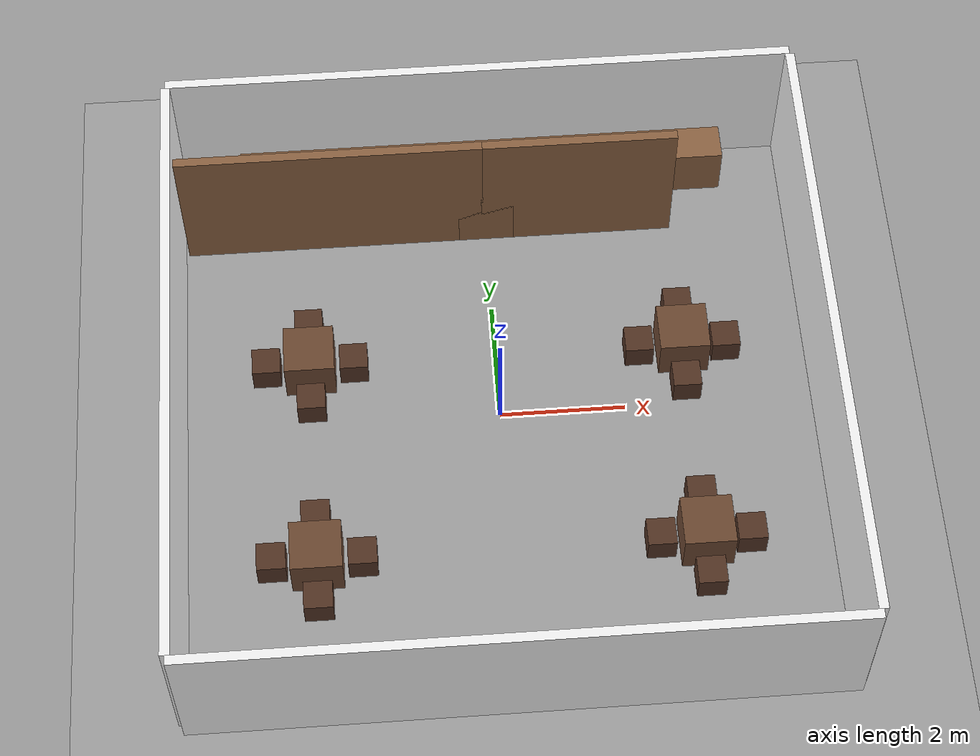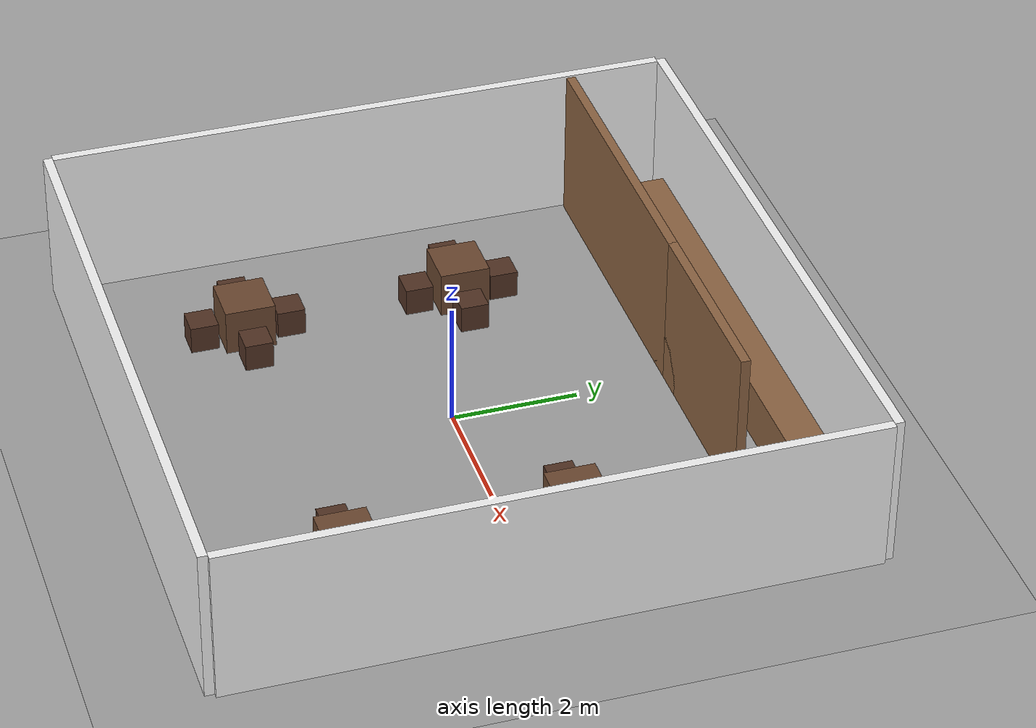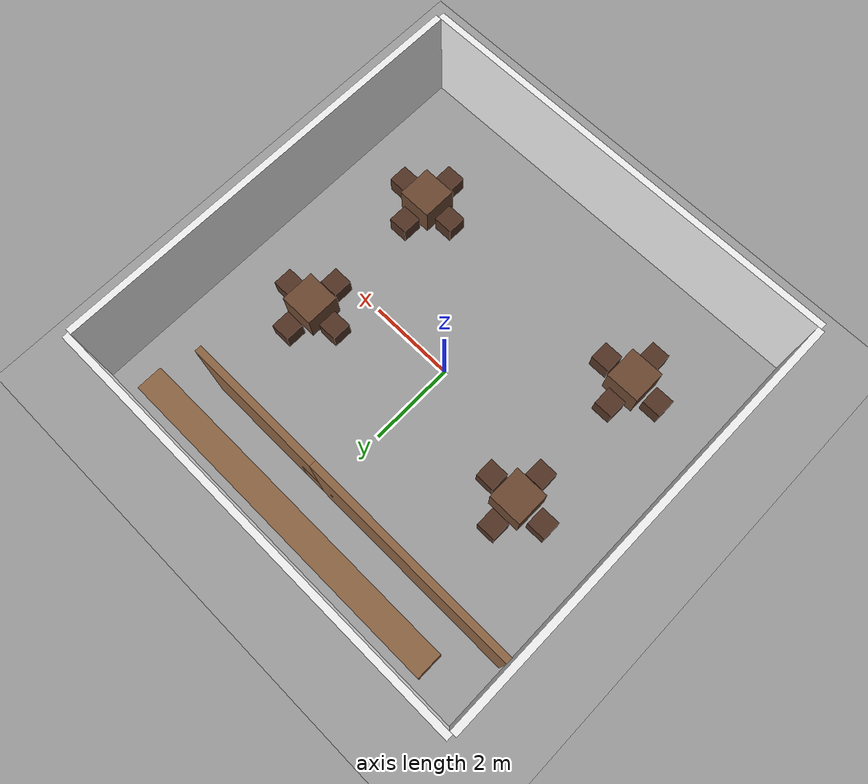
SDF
<?xml version="1.0" ?>
<sdf version="1.8">
  <world name="restaurant">
    <physics name="1ms" type="ignored">
      <max_step_size>0.001</max_step_size>
      <real_time_factor>1.0</real_time_factor>
    </physics>

    <plugin filename="libignition-gazebo6-physics-system.so" name="ignition::gazebo::systems::Physics"/>
    <plugin filename="libignition-gazebo6-user-commands-system.so" name="ignition::gazebo::systems::UserCommands"/>
    <plugin filename="libignition-gazebo6-scene-broadcaster-system.so" name="ignition::gazebo::systems::SceneBroadcaster"/>

    <gravity>0 0 -9.8</gravity>

    <light name="sun" type="directional">
      <cast_shadows>true</cast_shadows>
      <pose>0 0 10 0 0 0</pose>
      <diffuse>1 1 1 1</diffuse>
      <specular>0.15 0.15 0.15 1</specular>
      <direction>-0.5 0.5 -1</direction>
    </light>

    <model name="ground_plane">
      <static>true</static>
      <link name="link">
        <collision name="collision">
          <geometry>
            <plane>
              <normal>0 0 1</normal>
              <size>20 20</size>
            </plane>
          </geometry>
        </collision>
        <visual name="visual">
          <geometry>
            <plane>
              <normal>0 0 1</normal>
              <size>20 20</size>
            </plane>
          </geometry>
          <material>
            <ambient>0.55 0.55 0.55 1</ambient>
            <diffuse>0.62 0.62 0.62 1</diffuse>
            <specular>0.02 0.02 0.02 1</specular>
          </material>
        </visual>
      </link>
    </model>

    <model name="wall_south">
      <static>true</static>
      <pose>0 -5.075 1.25 0 0 0</pose>
      <link name="link">
        <collision name="col"><geometry><box><size>10.15 0.15 2.5</size></box></geometry></collision>
        <visual name="vis">
          <geometry><box><size>10.15 0.15 2.5</size></box></geometry>
          <material><ambient>0.95 0.95 0.95 1</ambient><diffuse>0.95 0.95 0.95 1</diffuse></material>
        </visual>
      </link>
    </model>

    <model name="wall_north">
      <static>true</static>
      <pose>0 5.075 1.25 0 0 0</pose>
      <link name="link">
        <collision name="col"><geometry><box><size>10.15 0.15 2.5</size></box></geometry></collision>
        <visual name="vis">
          <geometry><box><size>10.15 0.15 2.5</size></box></geometry>
          <material><ambient>0.95 0.95 0.95 1</ambient><diffuse>0.95 0.95 0.95 1</diffuse></material>
        </visual>
      </link>
    </model>

    <model name="wall_west">
      <static>true</static>
      <pose>-5.075 0 1.25 0 0 0</pose>
      <link name="link">
        <collision name="col"><geometry><box><size>0.15 10.0 2.5</size></box></geometry></collision>
        <visual name="vis">
          <geometry><box><size>0.15 10.0 2.5</size></box></geometry>
          <material><ambient>0.95 0.95 0.95 1</ambient><diffuse>0.95 0.95 0.95 1</diffuse></material>
        </visual>
      </link>
    </model>

    <model name="wall_east">
      <static>true</static>
      <pose>5.075 0 1.25 0 0 0</pose>
      <link name="link">
        <collision name="col"><geometry><box><size>0.15 10.0 2.5</size></box></geometry></collision>
        <visual name="vis">
          <geometry><box><size>0.15 10.0 2.5</size></box></geometry>
          <material><ambient>0.95 0.95 0.95 1</ambient><diffuse>0.95 0.95 0.95 1</diffuse></material>
        </visual>
      </link>
    </model>

    <model name="kitchen_divider_left">
      <static>true</static>
      <pose>1.5 3.5 1.25 0 0 0</pose>
      <link name="link">
        <collision name="col"><geometry><box><size>3.15 0.15 2.5</size></box></geometry></collision>
        <visual name="vis">
          <geometry><box><size>3.15 0.15 2.5</size></box></geometry>
          <material><ambient>0.55 0.39 0.26 1</ambient><diffuse>0.55 0.39 0.26 1</diffuse></material>
        </visual>
      </link>
    </model>

    <model name="kitchen_divider_right">
      <static>true</static>
      <pose>-2.5 3.5 1.25 0 0 0</pose>
      <link name="link">
        <collision name="col"><geometry><box><size>4.9 0.15 2.5</size></box></geometry></collision>
        <visual name="vis">
          <geometry><box><size>4.9 0.15 2.5</size></box></geometry>
          <material><ambient>0.55 0.39 0.26 1</ambient><diffuse>0.55 0.39 0.26 1</diffuse></material>
        </visual>
      </link>
    </model>

    <model name="serving_counter">
      <static>true</static>
      <pose>0.0 3.5 0.45 0 0 0</pose>
      <link name="link">
        <collision name="col"><geometry><box><size>0.9 0.15 0.9</size></box></geometry></collision>
        <visual name="vis">
          <geometry><box><size>0.9 0.15 0.9</size></box></geometry>
          <material><ambient>0.55 0.39 0.26 1</ambient><diffuse>0.55 0.39 0.26 1</diffuse></material>
        </visual>
      </link>
    </model>

    <model name="kitchen_counter">
      <static>true</static>
      <pose>0 4.5 0.45 0 0 0</pose>
      <link name="link">
        <collision name="col"><geometry><box><size>8.0 0.6 0.9</size></box></geometry></collision>
        <visual name="vis">
          <geometry><box><size>8.0 0.6 0.9</size></box></geometry>
          <material><ambient>0.55 0.39 0.26 1</ambient><diffuse>0.55 0.39 0.26 1</diffuse></material>
        </visual>
      </link>
    </model>

    <model name="table_1">
      <static>true</static>
      <pose>-3.0 -2.5 0.375 0 0 0</pose>
      <link name="link">
        <collision name="col"><geometry><box><size>0.8 0.8 0.75</size></box></geometry></collision>
        <visual name="vis"><geometry><box><size>0.8 0.8 0.75</size></box></geometry><material><ambient>0.42 0.28 0.19 1</ambient><diffuse>0.42 0.28 0.19 1</diffuse></material></visual>
      </link>
    </model>

    <model name="table_2">
      <static>true</static>
      <pose>3.0 -2.5 0.375 0 0 0</pose>
      <link name="link">
        <collision name="col"><geometry><box><size>0.8 0.8 0.75</size></box></geometry></collision>
        <visual name="vis"><geometry><box><size>0.8 0.8 0.75</size></box></geometry><material><ambient>0.42 0.28 0.19 1</ambient><diffuse>0.42 0.28 0.19 1</diffuse></material></visual>
      </link>
    </model>

    <model name="table_3">
      <static>true</static>
      <pose>-3.0 1.0 0.375 0 0 0</pose>
      <link name="link">
        <collision name="col"><geometry><box><size>0.8 0.8 0.75</size></box></geometry></collision>
        <visual name="vis"><geometry><box><size>0.8 0.8 0.75</size></box></geometry><material><ambient>0.42 0.28 0.19 1</ambient><diffuse>0.42 0.28 0.19 1</diffuse></material></visual>
      </link>
    </model>

    <model name="table_4">
      <static>true</static>
      <pose>3.0 1.0 0.375 0 0 0</pose>
      <link name="link">
        <collision name="col"><geometry><box><size>0.8 0.8 0.75</size></box></geometry></collision>
        <visual name="vis"><geometry><box><size>0.8 0.8 0.75</size></box></geometry><material><ambient>0.42 0.28 0.19 1</ambient><diffuse>0.42 0.28 0.19 1</diffuse></material></visual>
      </link>
    </model>

    <model name="chair_t1_n"><static>true</static><pose>-3.0 -1.8 0.225 0 0 0</pose><link name="link"><collision name="col"><geometry><box><size>0.45 0.45 0.45</size></box></geometry></collision><visual name="vis"><geometry><box><size>0.45 0.45 0.45</size></box></geometry><material><ambient>0.32 0.20 0.14 1</ambient><diffuse>0.32 0.20 0.14 1</diffuse></material></visual></link></model>
    <model name="chair_t1_s"><static>true</static><pose>-3.0 -3.2 0.225 0 0 0</pose><link name="link"><collision name="col"><geometry><box><size>0.45 0.45 0.45</size></box></geometry></collision><visual name="vis"><geometry><box><size>0.45 0.45 0.45</size></box></geometry><material><ambient>0.32 0.20 0.14 1</ambient><diffuse>0.32 0.20 0.14 1</diffuse></material></visual></link></model>
    <model name="chair_t1_e"><static>true</static><pose>-2.3 -2.5 0.225 0 0 0</pose><link name="link"><collision name="col"><geometry><box><size>0.45 0.45 0.45</size></box></geometry></collision><visual name="vis"><geometry><box><size>0.45 0.45 0.45</size></box></geometry><material><ambient>0.32 0.20 0.14 1</ambient><diffuse>0.32 0.20 0.14 1</diffuse></material></visual></link></model>
    <model name="chair_t1_w"><static>true</static><pose>-3.7 -2.5 0.225 0 0 0</pose><link name="link"><collision name="col"><geometry><box><size>0.45 0.45 0.45</size></box></geometry></collision><visual name="vis"><geometry><box><size>0.45 0.45 0.45</size></box></geometry><material><ambient>0.32 0.20 0.14 1</ambient><diffuse>0.32 0.20 0.14 1</diffuse></material></visual></link></model>

    <model name="chair_t2_n"><static>true</static><pose>3.0 -1.8 0.225 0 0 0</pose><link name="link"><collision name="col"><geometry><box><size>0.45 0.45 0.45</size></box></geometry></collision><visual name="vis"><geometry><box><size>0.45 0.45 0.45</size></box></geometry><material><ambient>0.32 0.20 0.14 1</ambient><diffuse>0.32 0.20 0.14 1</diffuse></material></visual></link></model>
    <model name="chair_t2_s"><static>true</static><pose>3.0 -3.2 0.225 0 0 0</pose><link name="link"><collision name="col"><geometry><box><size>0.45 0.45 0.45</size></box></geometry></collision><visual name="vis"><geometry><box><size>0.45 0.45 0.45</size></box></geometry><material><ambient>0.32 0.20 0.14 1</ambient><diffuse>0.32 0.20 0.14 1</diffuse></material></visual></link></model>
    <model name="chair_t2_e"><static>true</static><pose>3.7 -2.5 0.225 0 0 0</pose><link name="link"><collision name="col"><geometry><box><size>0.45 0.45 0.45</size></box></geometry></collision><visual name="vis"><geometry><box><size>0.45 0.45 0.45</size></box></geometry><material><ambient>0.32 0.20 0.14 1</ambient><diffuse>0.32 0.20 0.14 1</diffuse></material></visual></link></model>
    <model name="chair_t2_w"><static>true</static><pose>2.3 -2.5 0.225 0 0 0</pose><link name="link"><collision name="col"><geometry><box><size>0.45 0.45 0.45</size></box></geometry></collision><visual name="vis"><geometry><box><size>0.45 0.45 0.45</size></box></geometry><material><ambient>0.32 0.20 0.14 1</ambient><diffuse>0.32 0.20 0.14 1</diffuse></material></visual></link></model>

    <model name="chair_t3_n"><static>true</static><pose>-3.0 1.7 0.225 0 0 0</pose><link name="link"><collision name="col"><geometry><box><size>0.45 0.45 0.45</size></box></geometry></collision><visual name="vis"><geometry><box><size>0.45 0.45 0.45</size></box></geometry><material><ambient>0.32 0.20 0.14 1</ambient><diffuse>0.32 0.20 0.14 1</diffuse></material></visual></link></model>
    <model name="chair_t3_s"><static>true</static><pose>-3.0 0.3 0.225 0 0 0</pose><link name="link"><collision name="col"><geometry><box><size>0.45 0.45 0.45</size></box></geometry></collision><visual name="vis"><geometry><box><size>0.45 0.45 0.45</size></box></geometry><material><ambient>0.32 0.20 0.14 1</ambient><diffuse>0.32 0.20 0.14 1</diffuse></material></visual></link></model>
    <model name="chair_t3_e"><static>true</static><pose>-2.3 1.0 0.225 0 0 0</pose><link name="link"><collision name="col"><geometry><box><size>0.45 0.45 0.45</size></box></geometry></collision><visual name="vis"><geometry><box><size>0.45 0.45 0.45</size></box></geometry><material><ambient>0.32 0.20 0.14 1</ambient><diffuse>0.32 0.20 0.14 1</diffuse></material></visual></link></model>
    <model name="chair_t3_w"><static>true</static><pose>-3.7 1.0 0.225 0 0 0</pose><link name="link"><collision name="col"><geometry><box><size>0.45 0.45 0.45</size></box></geometry></collision><visual name="vis"><geometry><box><size>0.45 0.45 0.45</size></box></geometry><material><ambient>0.32 0.20 0.14 1</ambient><diffuse>0.32 0.20 0.14 1</diffuse></material></visual></link></model>

    <model name="chair_t4_n"><static>true</static><pose>3.0 1.7 0.225 0 0 0</pose><link name="link"><collision name="col"><geometry><box><size>0.45 0.45 0.45</size></box></geometry></collision><visual name="vis"><geometry><box><size>0.45 0.45 0.45</size></box></geometry><material><ambient>0.32 0.20 0.14 1</ambient><diffuse>0.32 0.20 0.14 1</diffuse></material></visual></link></model>
    <model name="chair_t4_s"><static>true</static><pose>3.0 0.3 0.225 0 0 0</pose><link name="link"><collision name="col"><geometry><box><size>0.45 0.45 0.45</size></box></geometry></collision><visual name="vis"><geometry><box><size>0.45 0.45 0.45</size></box></geometry><material><ambient>0.32 0.20 0.14 1</ambient><diffuse>0.32 0.20 0.14 1</diffuse></material></visual></link></model>
    <model name="chair_t4_e"><static>true</static><pose>3.7 1.0 0.225 0 0 0</pose><link name="link"><collision name="col"><geometry><box><size>0.45 0.45 0.45</size></box></geometry></collision><visual name="vis"><geometry><box><size>0.45 0.45 0.45</size></box></geometry><material><ambient>0.32 0.20 0.14 1</ambient><diffuse>0.32 0.20 0.14 1</diffuse></material></visual></link></model>
    <model name="chair_t4_w"><static>true</static><pose>2.3 1.0 0.225 0 0 0</pose><link name="link"><collision name="col"><geometry><box><size>0.45 0.45 0.45</size></box></geometry></collision><visual name="vis"><geometry><box><size>0.45 0.45 0.45</size></box></geometry><material><ambient>0.32 0.20 0.14 1</ambient><diffuse>0.32 0.20 0.14 1</diffuse></material></visual></link></model>

  </world>
</sdf>
